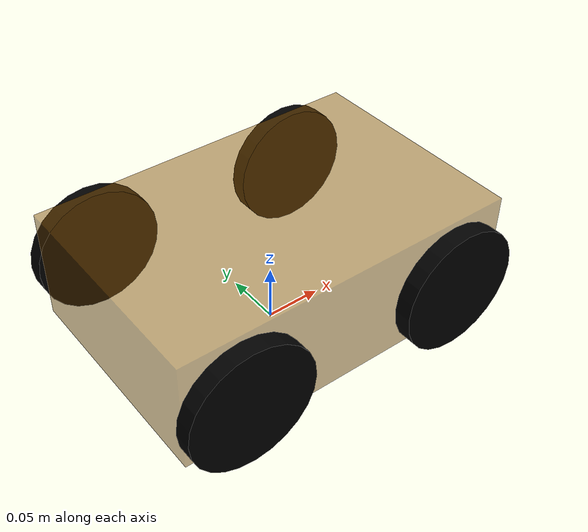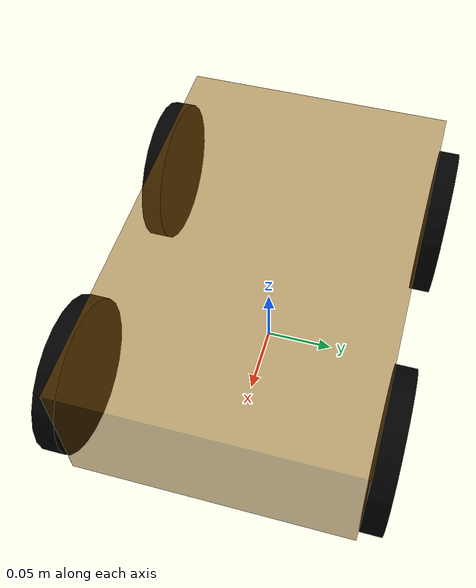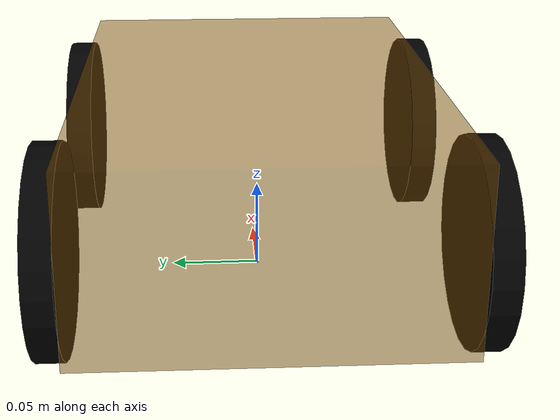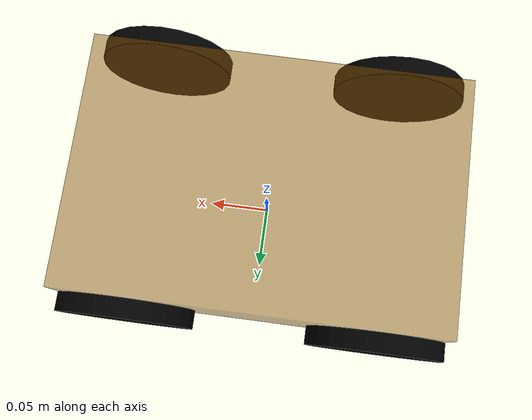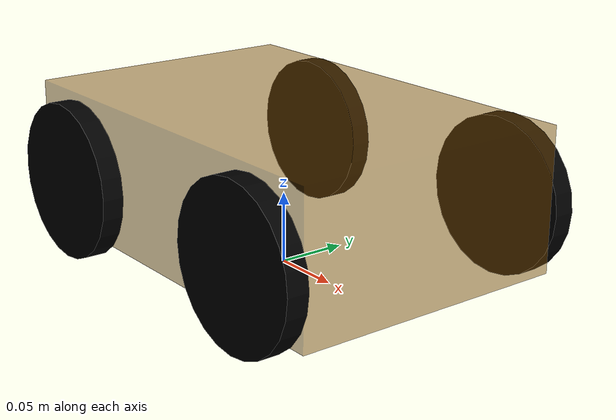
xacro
<!--
    使用 xacro 优化 URDF 版的小车底盘实现：

    实现思路:
    1.将一些常量、变量封装为 xacro:property
      比如:PI 值、小车底盘半径、离地间距、车轮半径、宽度 ....
    2.使用 宏 封装驱动轮以及支撑轮实现，调用相关宏生成驱动轮与支撑轮

-->
<!-- 根标签，必须声明 xmlns:xacro -->
<robot name="my_base" xmlns:xacro="http://www.ros.org/wiki/xacro">
    <!-- 封装变量、常量 -->
    <xacro:property name="PI" value="3.141"/>
    <!-- 宏:黑色设置 -->
    <material name="black">
        <color rgba="0.0 0.0 0.0 1.0" />
    </material>
    <!-- 底盘属性 -->
    <xacro:property name="base_footprint_radius" value="0.001" /> <!-- base_footprint 半径  -->
    <xacro:property name="base_link_wide" value="0.2" /> <!-- base_link 半径 -->
    <xacro:property name="base_link_length" value="0.3" /> <!-- base_link 长 -->
    <xacro:property name="base_link_hight" value="0.1" /> <!-- base_link hight -->
    <xacro:property name="earth_space" value="0.015" /> <!-- 离地间距 -->

    <!-- 底盘 -->
    <link name="base_footprint">
      <visual>
        <geometry>
          <sphere radius="${base_footprint_radius}" />
        </geometry>
      </visual>
    </link>

    <link name="base_link">
      <visual>
        <geometry>
          <box size=" ${base_link_length} ${base_link_wide} ${base_link_hight}" />
        </geometry>
        <origin xyz="0 0 0" rpy="0 0 0" />
        <material name="yellow">
          <color rgba="0.5 0.3 0.0 0.5" />
        </material>
      </visual>
    </link>

    <joint name="base_link2base_footprint" type="fixed">
      <parent link="base_footprint" />
      <child link="base_link" />
      <origin xyz="0 0 ${earth_space + base_link_hight / 2 }" />
    </joint>

    <!-- 驱动轮 -->
    <!-- 驱动轮属性 -->
    <xacro:property name="wheel_radius" value="0.055" /><!-- 半径 -->
    <xacro:property name="wheel_length" value="0.015" /><!-- 宽度 -->
    <!-- 驱动轮宏实现 -->
    <xacro:macro name="add_wheels" params="name flag_fb flag_rl">

      <link name="${name}_wheel">
        <visual>
          <geometry>
            <cylinder radius="${wheel_radius}" length="${wheel_length}" />
          </geometry>
          <origin xyz="0.0 0.0 0.0" rpy="${PI / 2} 0.0 0.0" />
          <material name="black" />
        </visual>
      </link>

      <joint name="${name}_wheel2base_link" type="continuous">
        <parent link="base_link" />
        <child link="${name}_wheel" />
        <origin xyz="${flag_fb * (base_link_wide) / 2} ${flag_rl * (base_link_wide / 2 + wheel_length / 2)} ${-(earth_space + base_link_hight / 2 - wheel_radius) }" />
        <axis xyz="0 1 0" />
        <limit effort="1000" velocity="1" lower="-0.5" upper="0.5"/>
      </joint>
    </xacro:macro>
    <xacro:add_wheels name="left_front" flag_fb="1" flag_rl="1" />
    <xacro:add_wheels name="left_back" flag_fb="-1" flag_rl="1" />
    <xacro:add_wheels name="right_front" flag_fb="1" flag_rl="-1"/>
    <xacro:add_wheels name="right_back" flag_fb="-1" flag_rl="-1"/>
    <!-- 支撑轮 -->
    <!-- 支撑轮属性 -->

    <!-- 支撑轮宏 -->

</robot>
